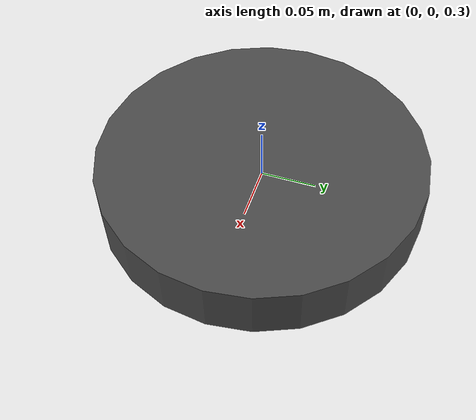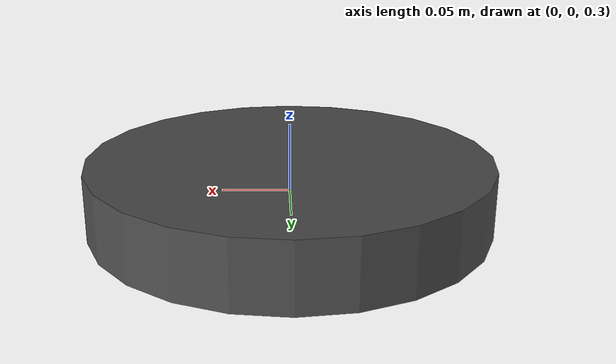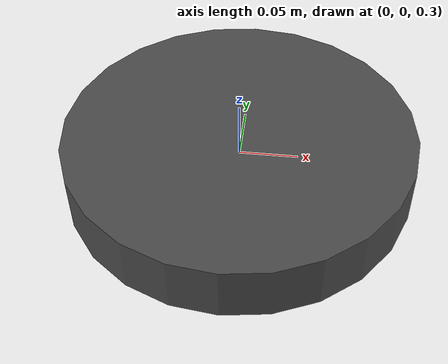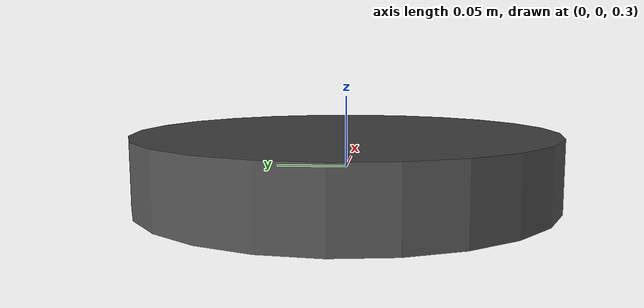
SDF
<?xml version="1.0" ?>
<sdf version="1.6">
  <model name="ai_drone_camera">
    <pose>0 0 0.3 0 0 0</pose>

    <link name="base_link">
      <inertial>
        <mass>1.0</mass>
        <inertia>
          <ixx>0.03</ixx><iyy>0.03</iyy><izz>0.03</izz>
        </inertia>
      </inertial>

      <collision name="collision">
        <geometry>
          <cylinder>
            <radius>0.15</radius>
            <length>0.05</length>
          </cylinder>
        </geometry>
      </collision>

      <visual name="visual">
        <geometry>
          <cylinder>
            <radius>0.15</radius>
            <length>0.05</length>
          </cylinder>
        </geometry>
        <material><ambient>0.3 0.3 0.3 1</ambient></material>
      </visual>

      <!-- downward camera -->
      <sensor name="camera" type="camera">
        <update_rate>15</update_rate>
        <camera>
          <horizontal_fov>1.39626</horizontal_fov>
          <image>
            <width>640</width>
            <height>480</height>
            <format>R8G8B8</format>
          </image>
          <clip><near>0.1</near><far>100</far></clip>
        </camera>
        <always_on>true</always_on>
        <visualize>true</visualize>
        <topic>/camera/image_raw</topic>
      </sensor>
    </link>
  </model>
</sdf>
